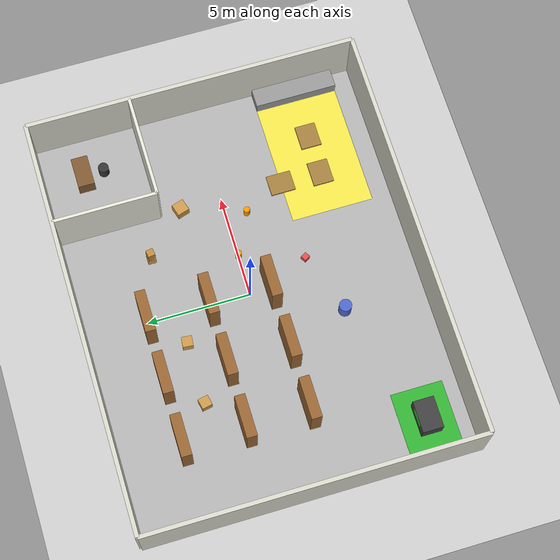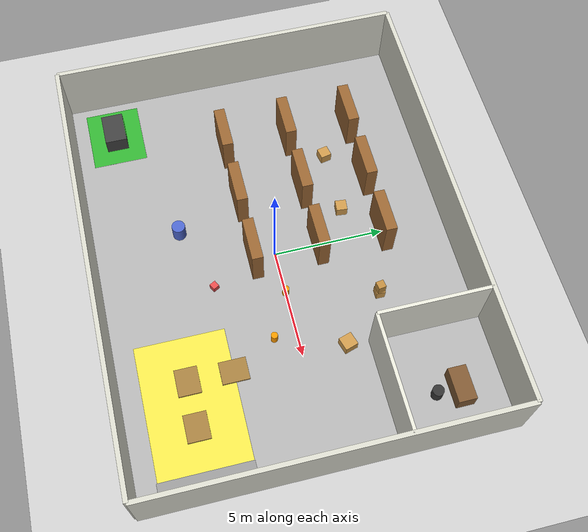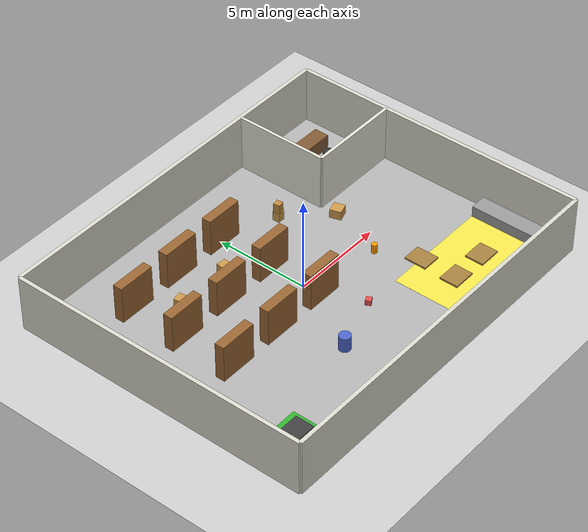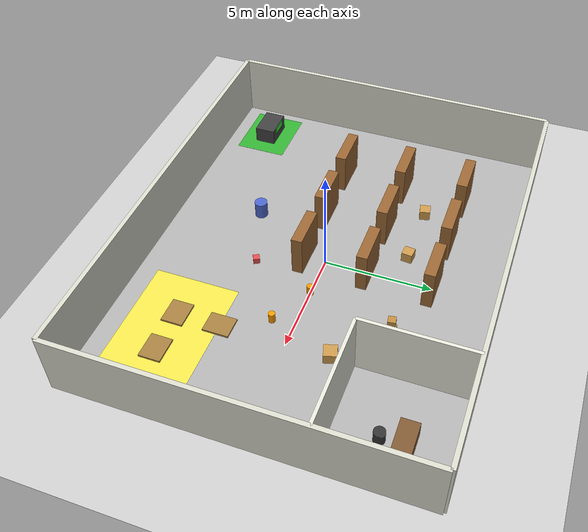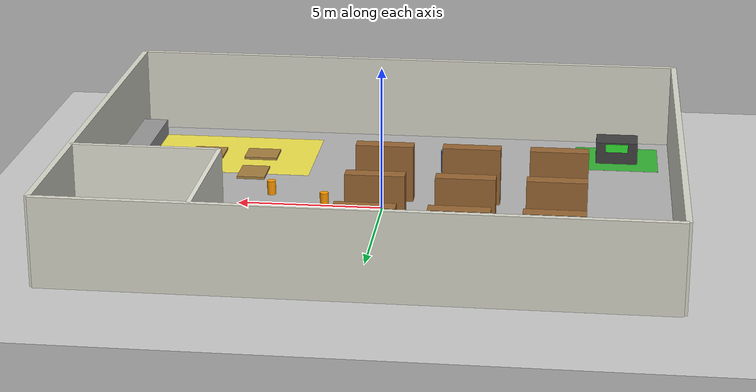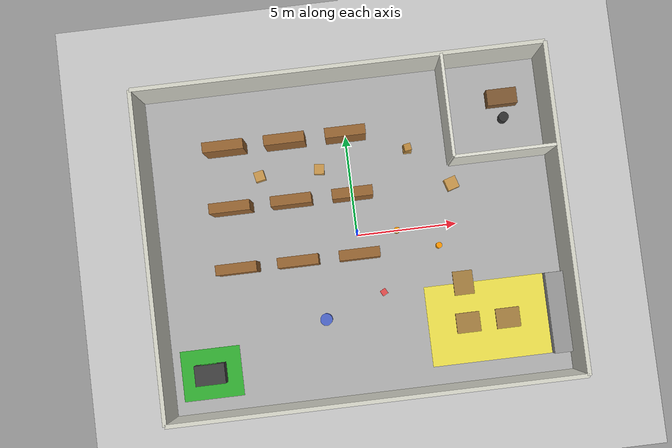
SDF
<?xml version="1.0" ?>
<sdf version="1.6">
  <world name="warehouse">

    <!-- Physics -->
    <physics type="ode">
      <max_step_size>0.001</max_step_size>
      <real_time_factor>1</real_time_factor>
    </physics>

    <!-- Sun -->
    <include>
      <uri>model://sun</uri>
    </include>

    <!-- Ground Plane (Floor) -->
    <include>
      <uri>model://ground_plane</uri>
    </include>

    <!-- ==================== FLOOR ==================== -->
    <model name="warehouse_floor">
      <static>true</static>
      <link name="floor_link">
        <collision name="floor_collision">
          <geometry>
            <box><size>20 16 0.01</size></box>
          </geometry>
        </collision>
        <visual name="floor_visual">
          <geometry>
            <box><size>20 16 0.01</size></box>
          </geometry>
          <material>
            <ambient>0.6 0.6 0.6 1</ambient>
            <diffuse>0.7 0.7 0.7 1</diffuse>
          </material>
        </visual>
      </link>
    </model>

    <!-- ==================== WALLS ==================== -->
    <!-- North Wall -->
    <model name="wall_north">
      <static>true</static>
      <pose>0 8 1.5 0 0 0</pose>
      <link name="link">
        <collision name="collision">
          <geometry><box><size>20 0.2 3</size></box></geometry>
        </collision>
        <visual name="visual">
          <geometry><box><size>20 0.2 3</size></box></geometry>
          <material><ambient>0.8 0.8 0.75 1</ambient><diffuse>0.85 0.85 0.8 1</diffuse></material>
        </visual>
      </link>
    </model>

    <!-- South Wall -->
    <model name="wall_south">
      <static>true</static>
      <pose>0 -8 1.5 0 0 0</pose>
      <link name="link">
        <collision name="collision">
          <geometry><box><size>20 0.2 3</size></box></geometry>
        </collision>
        <visual name="visual">
          <geometry><box><size>20 0.2 3</size></box></geometry>
          <material><ambient>0.8 0.8 0.75 1</ambient><diffuse>0.85 0.85 0.8 1</diffuse></material>
        </visual>
      </link>
    </model>

    <!-- East Wall -->
    <model name="wall_east">
      <static>true</static>
      <pose>10 0 1.5 0 0 0</pose>
      <link name="link">
        <collision name="collision">
          <geometry><box><size>0.2 16 3</size></box></geometry>
        </collision>
        <visual name="visual">
          <geometry><box><size>0.2 16 3</size></box></geometry>
          <material><ambient>0.8 0.8 0.75 1</ambient><diffuse>0.85 0.85 0.8 1</diffuse></material>
        </visual>
      </link>
    </model>

    <!-- West Wall -->
    <model name="wall_west">
      <static>true</static>
      <pose>-10 0 1.5 0 0 0</pose>
      <link name="link">
        <collision name="collision">
          <geometry><box><size>0.2 16 3</size></box></geometry>
        </collision>
        <visual name="visual">
          <geometry><box><size>0.2 16 3</size></box></geometry>
          <material><ambient>0.8 0.8 0.75 1</ambient><diffuse>0.85 0.85 0.8 1</diffuse></material>
        </visual>
      </link>
    </model>

    <!-- ==================== SHELVES (3 rows) ==================== -->
    <!-- Shelf Row 1 -->
    <model name="shelf_1a">
      <static>true</static>
      <pose>-6 5 1 0 0 0</pose>
      <link name="link">
        <collision name="collision"><geometry><box><size>2 0.5 2</size></box></geometry></collision>
        <visual name="visual"><geometry><box><size>2 0.5 2</size></box></geometry>
          <material><ambient>0.55 0.35 0.15 1</ambient><diffuse>0.6 0.4 0.2 1</diffuse></material>
        </visual>
      </link>
    </model>
    <model name="shelf_1b">
      <static>true</static>
      <pose>-3 5 1 0 0 0</pose>
      <link name="link">
        <collision name="collision"><geometry><box><size>2 0.5 2</size></box></geometry></collision>
        <visual name="visual"><geometry><box><size>2 0.5 2</size></box></geometry>
          <material><ambient>0.55 0.35 0.15 1</ambient><diffuse>0.6 0.4 0.2 1</diffuse></material>
        </visual>
      </link>
    </model>
    <model name="shelf_1c">
      <static>true</static>
      <pose>0 5 1 0 0 0</pose>
      <link name="link">
        <collision name="collision"><geometry><box><size>2 0.5 2</size></box></geometry></collision>
        <visual name="visual"><geometry><box><size>2 0.5 2</size></box></geometry>
          <material><ambient>0.55 0.35 0.15 1</ambient><diffuse>0.6 0.4 0.2 1</diffuse></material>
        </visual>
      </link>
    </model>

    <!-- Shelf Row 2 -->
    <model name="shelf_2a">
      <static>true</static>
      <pose>-6 2 1 0 0 0</pose>
      <link name="link">
        <collision name="collision"><geometry><box><size>2 0.5 2</size></box></geometry></collision>
        <visual name="visual"><geometry><box><size>2 0.5 2</size></box></geometry>
          <material><ambient>0.55 0.35 0.15 1</ambient><diffuse>0.6 0.4 0.2 1</diffuse></material>
        </visual>
      </link>
    </model>
    <model name="shelf_2b">
      <static>true</static>
      <pose>-3 2 1 0 0 0</pose>
      <link name="link">
        <collision name="collision"><geometry><box><size>2 0.5 2</size></box></geometry></collision>
        <visual name="visual"><geometry><box><size>2 0.5 2</size></box></geometry>
          <material><ambient>0.55 0.35 0.15 1</ambient><diffuse>0.6 0.4 0.2 1</diffuse></material>
        </visual>
      </link>
    </model>
    <model name="shelf_2c">
      <static>true</static>
      <pose>0 2 1 0 0 0</pose>
      <link name="link">
        <collision name="collision"><geometry><box><size>2 0.5 2</size></box></geometry></collision>
        <visual name="visual"><geometry><box><size>2 0.5 2</size></box></geometry>
          <material><ambient>0.55 0.35 0.15 1</ambient><diffuse>0.6 0.4 0.2 1</diffuse></material>
        </visual>
      </link>
    </model>

    <!-- Shelf Row 3 -->
    <model name="shelf_3a">
      <static>true</static>
      <pose>-6 -1 1 0 0 0</pose>
      <link name="link">
        <collision name="collision"><geometry><box><size>2 0.5 2</size></box></geometry></collision>
        <visual name="visual"><geometry><box><size>2 0.5 2</size></box></geometry>
          <material><ambient>0.55 0.35 0.15 1</ambient><diffuse>0.6 0.4 0.2 1</diffuse></material>
        </visual>
      </link>
    </model>
    <model name="shelf_3b">
      <static>true</static>
      <pose>-3 -1 1 0 0 0</pose>
      <link name="link">
        <collision name="collision"><geometry><box><size>2 0.5 2</size></box></geometry></collision>
        <visual name="visual"><geometry><box><size>2 0.5 2</size></box></geometry>
          <material><ambient>0.55 0.35 0.15 1</ambient><diffuse>0.6 0.4 0.2 1</diffuse></material>
        </visual>
      </link>
    </model>
    <model name="shelf_3c">
      <static>true</static>
      <pose>0 -1 1 0 0 0</pose>
      <link name="link">
        <collision name="collision"><geometry><box><size>2 0.5 2</size></box></geometry></collision>
        <visual name="visual"><geometry><box><size>2 0.5 2</size></box></geometry>
          <material><ambient>0.55 0.35 0.15 1</ambient><diffuse>0.6 0.4 0.2 1</diffuse></material>
        </visual>
      </link>
    </model>

    <!-- ==================== BOXES ==================== -->
    <model name="box_1">
      <static>true</static>
      <pose>-4.5 3.5 0.25 0 0 0.2</pose>
      <link name="link">
        <collision name="collision"><geometry><box><size>0.5 0.5 0.5</size></box></geometry></collision>
        <visual name="visual"><geometry><box><size>0.5 0.5 0.5</size></box></geometry>
          <material><ambient>0.7 0.5 0.2 1</ambient><diffuse>0.8 0.6 0.3 1</diffuse></material>
        </visual>
      </link>
    </model>
    <model name="box_2">
      <static>true</static>
      <pose>-1.5 3.5 0.25 0 0 -0.1</pose>
      <link name="link">
        <collision name="collision"><geometry><box><size>0.5 0.5 0.5</size></box></geometry></collision>
        <visual name="visual"><geometry><box><size>0.5 0.5 0.5</size></box></geometry>
          <material><ambient>0.7 0.5 0.2 1</ambient><diffuse>0.8 0.6 0.3 1</diffuse></material>
        </visual>
      </link>
    </model>
    <model name="box_3">
      <static>true</static>
      <pose>3 4 0.25 0 0 0</pose>
      <link name="link">
        <collision name="collision"><geometry><box><size>0.4 0.4 0.5</size></box></geometry></collision>
        <visual name="visual"><geometry><box><size>0.4 0.4 0.5</size></box></geometry>
          <material><ambient>0.7 0.5 0.2 1</ambient><diffuse>0.8 0.6 0.3 1</diffuse></material>
        </visual>
      </link>
    </model>
    <model name="box_4">
      <static>true</static>
      <pose>5 2 0.25 0 0 0.3</pose>
      <link name="link">
        <collision name="collision"><geometry><box><size>0.6 0.6 0.5</size></box></geometry></collision>
        <visual name="visual"><geometry><box><size>0.6 0.6 0.5</size></box></geometry>
          <material><ambient>0.7 0.5 0.2 1</ambient><diffuse>0.8 0.6 0.3 1</diffuse></material>
        </visual>
      </link>
    </model>
    <model name="box_5">
      <static>true</static>
      <pose>3 4 0.75 0 0 0.15</pose>
      <link name="link">
        <collision name="collision"><geometry><box><size>0.35 0.35 0.5</size></box></geometry></collision>
        <visual name="visual"><geometry><box><size>0.35 0.35 0.5</size></box></geometry>
          <material><ambient>0.65 0.45 0.15 1</ambient><diffuse>0.75 0.55 0.25 1</diffuse></material>
        </visual>
      </link>
    </model>

    <!-- ==================== PALLETS ==================== -->
    <model name="pallet_1">
      <static>true</static>
      <pose>5 -5 0.05 0 0 0</pose>
      <link name="link">
        <collision name="collision"><geometry><box><size>1.2 1.0 0.1</size></box></geometry></collision>
        <visual name="visual"><geometry><box><size>1.2 1.0 0.1</size></box></geometry>
          <material><ambient>0.6 0.45 0.2 1</ambient><diffuse>0.65 0.5 0.25 1</diffuse></material>
        </visual>
      </link>
    </model>
    <model name="pallet_2">
      <static>true</static>
      <pose>7 -5 0.05 0 0 0</pose>
      <link name="link">
        <collision name="collision"><geometry><box><size>1.2 1.0 0.1</size></box></geometry></collision>
        <visual name="visual"><geometry><box><size>1.2 1.0 0.1</size></box></geometry>
          <material><ambient>0.6 0.45 0.2 1</ambient><diffuse>0.65 0.5 0.25 1</diffuse></material>
        </visual>
      </link>
    </model>
    <model name="pallet_3">
      <static>true</static>
      <pose>5 -3 0.05 0 0 1.5708</pose>
      <link name="link">
        <collision name="collision"><geometry><box><size>1.2 1.0 0.1</size></box></geometry></collision>
        <visual name="visual"><geometry><box><size>1.2 1.0 0.1</size></box></geometry>
          <material><ambient>0.6 0.45 0.2 1</ambient><diffuse>0.65 0.5 0.25 1</diffuse></material>
        </visual>
      </link>
    </model>

    <!-- ==================== LOADING AREA ==================== -->
    <!-- Loading area floor marking -->
    <model name="loading_area_floor">
      <static>true</static>
      <pose>6 -5 0.006 0 0 0</pose>
      <link name="link">
        <visual name="visual"><geometry><box><size>6 4 0.001</size></box></geometry>
          <material><ambient>0.9 0.85 0.2 1</ambient><diffuse>0.95 0.9 0.3 1</diffuse></material>
        </visual>
      </link>
    </model>
    <!-- Loading dock -->
    <model name="loading_dock">
      <static>true</static>
      <pose>9.5 -5 0.3 0 0 0</pose>
      <link name="link">
        <collision name="collision"><geometry><box><size>1 4 0.6</size></box></geometry></collision>
        <visual name="visual"><geometry><box><size>1 4 0.6</size></box></geometry>
          <material><ambient>0.5 0.5 0.5 1</ambient><diffuse>0.6 0.6 0.6 1</diffuse></material>
        </visual>
      </link>
    </model>

    <!-- ==================== CHARGING STATION ==================== -->
    <model name="charging_station_base">
      <static>true</static>
      <pose>-8 -6 0.4 0 0 0</pose>
      <link name="link">
        <collision name="collision"><geometry><box><size>1.5 1 0.8</size></box></geometry></collision>
        <visual name="visual"><geometry><box><size>1.5 1 0.8</size></box></geometry>
          <material><ambient>0.2 0.2 0.2 1</ambient><diffuse>0.25 0.25 0.25 1</diffuse></material>
        </visual>
      </link>
    </model>
    <!-- Charging indicator (green panel) -->
    <model name="charging_indicator">
      <static>true</static>
      <pose>-8 -5.49 0.6 0 0 0</pose>
      <link name="link">
        <visual name="visual"><geometry><box><size>0.8 0.02 0.3</size></box></geometry>
          <material><ambient>0.1 0.8 0.1 1</ambient><diffuse>0.2 0.9 0.2 1</diffuse></material>
        </visual>
      </link>
    </model>
    <!-- Charging floor marking -->
    <model name="charging_floor_mark">
      <static>true</static>
      <pose>-8 -6 0.006 0 0 0</pose>
      <link name="link">
        <visual name="visual"><geometry><box><size>3 2.5 0.001</size></box></geometry>
          <material><ambient>0.1 0.6 0.1 1</ambient><diffuse>0.2 0.7 0.2 1</diffuse></material>
        </visual>
      </link>
    </model>

    <!-- ==================== OFFICE ROOM ==================== -->
    <!-- Office walls -->
    <model name="office_wall_south">
      <static>true</static>
      <pose>7.5 3 1.5 0 0 0</pose>
      <link name="link">
        <collision name="collision"><geometry><box><size>5 0.15 3</size></box></geometry></collision>
        <visual name="visual"><geometry><box><size>5 0.15 3</size></box></geometry>
          <material><ambient>0.85 0.85 0.8 1</ambient><diffuse>0.9 0.9 0.85 1</diffuse></material>
        </visual>
      </link>
    </model>
    <model name="office_wall_west">
      <static>true</static>
      <pose>5 5.5 1.5 0 0 0</pose>
      <link name="link">
        <collision name="collision"><geometry><box><size>0.15 5 3</size></box></geometry></collision>
        <visual name="visual"><geometry><box><size>0.15 5 3</size></box></geometry>
          <material><ambient>0.85 0.85 0.8 1</ambient><diffuse>0.9 0.9 0.85 1</diffuse></material>
        </visual>
      </link>
    </model>
    <!-- Office desk -->
    <model name="office_desk">
      <static>true</static>
      <pose>8 6 0.4 0 0 0</pose>
      <link name="link">
        <collision name="collision"><geometry><box><size>1.5 0.8 0.8</size></box></geometry></collision>
        <visual name="visual"><geometry><box><size>1.5 0.8 0.8</size></box></geometry>
          <material><ambient>0.45 0.3 0.15 1</ambient><diffuse>0.5 0.35 0.2 1</diffuse></material>
        </visual>
      </link>
    </model>
    <!-- Office chair -->
    <model name="office_chair">
      <static>true</static>
      <pose>8 5 0.3 0 0 0</pose>
      <link name="link">
        <collision name="collision"><geometry><cylinder><radius>0.25</radius><length>0.6</length></cylinder></geometry></collision>
        <visual name="visual"><geometry><cylinder><radius>0.25</radius><length>0.6</length></cylinder></geometry>
          <material><ambient>0.15 0.15 0.15 1</ambient><diffuse>0.2 0.2 0.2 1</diffuse></material>
        </visual>
      </link>
    </model>

    <!-- ==================== SMALL OBSTACLES ==================== -->
    <model name="obstacle_cone_1">
      <static>true</static>
      <pose>2 0 0.25 0 0 0</pose>
      <link name="link">
        <collision name="collision"><geometry><cylinder><radius>0.15</radius><length>0.5</length></cylinder></geometry></collision>
        <visual name="visual"><geometry><cylinder><radius>0.15</radius><length>0.5</length></cylinder></geometry>
          <material><ambient>0.9 0.5 0.0 1</ambient><diffuse>1.0 0.6 0.0 1</diffuse></material>
        </visual>
      </link>
    </model>
    <model name="obstacle_cone_2">
      <static>true</static>
      <pose>4 -1 0.25 0 0 0</pose>
      <link name="link">
        <collision name="collision"><geometry><cylinder><radius>0.15</radius><length>0.5</length></cylinder></geometry></collision>
        <visual name="visual"><geometry><cylinder><radius>0.15</radius><length>0.5</length></cylinder></geometry>
          <material><ambient>0.9 0.5 0.0 1</ambient><diffuse>1.0 0.6 0.0 1</diffuse></material>
        </visual>
      </link>
    </model>
    <model name="obstacle_barrel">
      <static>true</static>
      <pose>-2 -4 0.4 0 0 0</pose>
      <link name="link">
        <collision name="collision"><geometry><cylinder><radius>0.3</radius><length>0.8</length></cylinder></geometry></collision>
        <visual name="visual"><geometry><cylinder><radius>0.3</radius><length>0.8</length></cylinder></geometry>
          <material><ambient>0.2 0.3 0.7 1</ambient><diffuse>0.3 0.4 0.8 1</diffuse></material>
        </visual>
      </link>
    </model>
    <model name="obstacle_small_box">
      <static>true</static>
      <pose>1 -3 0.15 0 0 0.5</pose>
      <link name="link">
        <collision name="collision"><geometry><box><size>0.3 0.3 0.3</size></box></geometry></collision>
        <visual name="visual"><geometry><box><size>0.3 0.3 0.3</size></box></geometry>
          <material><ambient>0.8 0.2 0.2 1</ambient><diffuse>0.9 0.3 0.3 1</diffuse></material>
        </visual>
      </link>
    </model>

    <!-- Warehouse ceiling lights -->
    <light name="warehouse_light_1" type="point">
      <pose>-5 3 2.8 0 0 0</pose>
      <diffuse>0.9 0.9 0.85 1</diffuse>
      <attenuation><range>15</range><constant>0.3</constant><linear>0.05</linear><quadratic>0.01</quadratic></attenuation>
    </light>
    <light name="warehouse_light_2" type="point">
      <pose>3 3 2.8 0 0 0</pose>
      <diffuse>0.9 0.9 0.85 1</diffuse>
      <attenuation><range>15</range><constant>0.3</constant><linear>0.05</linear><quadratic>0.01</quadratic></attenuation>
    </light>
    <light name="warehouse_light_3" type="point">
      <pose>-5 -3 2.8 0 0 0</pose>
      <diffuse>0.9 0.9 0.85 1</diffuse>
      <attenuation><range>15</range><constant>0.3</constant><linear>0.05</linear><quadratic>0.01</quadratic></attenuation>
    </light>
    <light name="warehouse_light_4" type="point">
      <pose>5 -3 2.8 0 0 0</pose>
      <diffuse>0.9 0.9 0.85 1</diffuse>
      <attenuation><range>15</range><constant>0.3</constant><linear>0.05</linear><quadratic>0.01</quadratic></attenuation>
    </light>

  </world>
</sdf>
